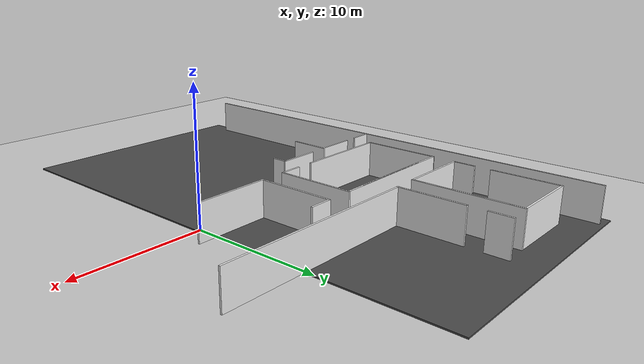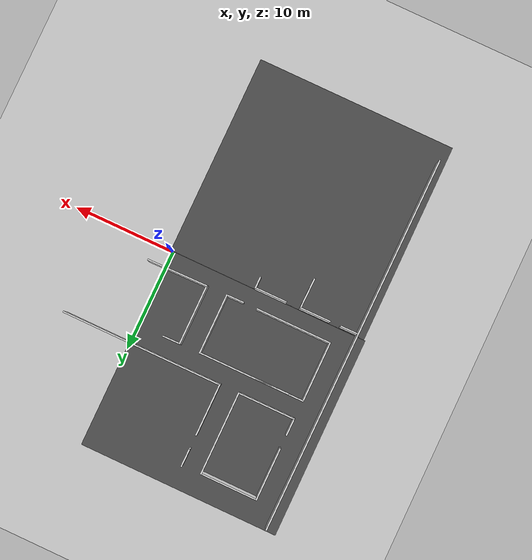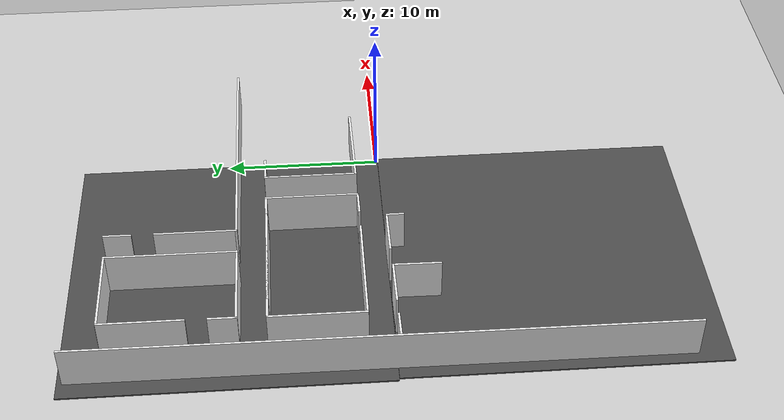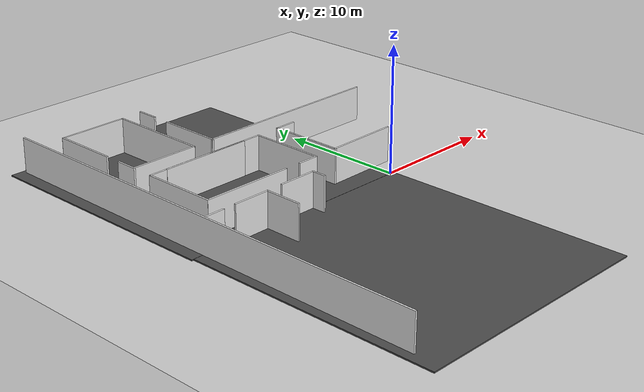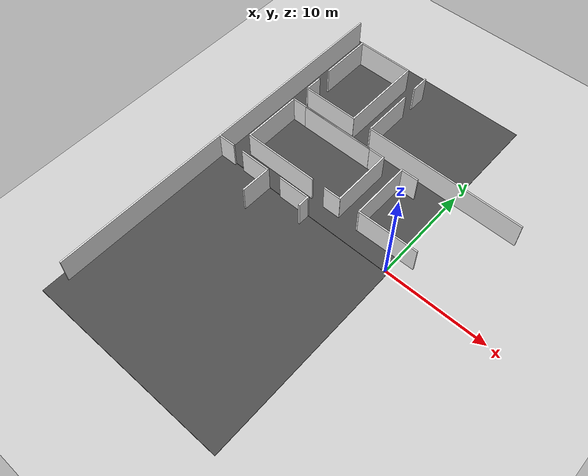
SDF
<sdf version="1.6">
 <world name="default">
  <model name="ground_plane">
   <static>1</static>
   <link name="link">
    <collision name="collision">
     <geometry><plane><normal>0 0 1</normal><size>100 100</size></plane></geometry>
     <surface><friction><ode><mu>100</mu><mu2>50</mu2></ode></friction></surface>
    </collision>
    <visual name="visual">
     <cast_shadows>0</cast_shadows>
     <geometry><plane><normal>0 0 1</normal><size>100 100</size></plane></geometry>
     <material>
      <script><uri>file://media/materials/scripts/gazebo.material</uri><name>Gazebo/Grey</name></script>
     </material>
    </visual>
    <velocity_decay><linear>0</linear><angular>0</angular></velocity_decay>
   </link>
  </model>
  <model name="asphalt_plane">
   <static>1</static>
   <link name="link">
    <collision name="collision"><geometry><box><size>20 20 0.1</size></box></geometry></collision>
    <visual name="visual">
     <cast_shadows>0</cast_shadows>
     <geometry><box><size>20 20 0.1</size></box></geometry>
     <material>
      <script>
       <uri>model://asphalt_plane/materials/scripts</uri>
       <uri>model://asphalt_plane/materials/textures</uri>
       <name>vrc/asphalt</name>
      </script>
     </material>
    </visual>
   </link>
   <pose>-9.73878 -10.1135 0 0 -0 0</pose>
  </model>
  <model name="asphalt_plane_0">
   <static>1</static>
   <link name="link">
    <collision name="collision"><geometry><box><size>20 20 0.1</size></box></geometry></collision>
    <visual name="visual">
     <cast_shadows>0</cast_shadows>
     <geometry><box><size>20 20 0.1</size></box></geometry>
     <material>
      <script>
       <uri>model://asphalt_plane/materials/scripts</uri>
       <uri>model://asphalt_plane/materials/textures</uri>
       <name>vrc/asphalt</name>
      </script>
     </material>
    </visual>
   </link>
   <pose>-9.90113 9.90141 0 0 -0 0</pose>
  </model>
  <model name="white_wall_outside_clone_1">
   <link name="link">
    <inertial>
     <mass>1</mass>
     <inertia>
      <ixx>0.166667</ixx>
      <ixy>0</ixy>
      <ixz>0</ixz>
      <iyy>0.166667</iyy>
      <iyz>0</iyz>
      <izz>0.166667</izz>
     </inertia>
    </inertial>
    <visual name="visual">
     <geometry><box><size>37.6355 0.139088 2.78993</size></box></geometry>
     <material>
      <script><name>Gazebo/White</name><uri>file://media/materials/scripts/gazebo.material</uri></script>
      <shader type="vertex"><normal_map>__default__</normal_map></shader>
      <ambient>1 1 1 1</ambient>
      <diffuse>1 1 1 1</diffuse>
      <specular>0 0 0 1</specular>
      <emissive>0 0 0 1</emissive>
     </material>
    </visual>
    <collision name="collision">
     <geometry><box><size>37.6355 0.139088 2.78993</size></box></geometry>
     <surface>
      <friction>
       <ode><mu>1</mu><mu2>1</mu2><fdir1>0 0 0</fdir1><slip1>0</slip1><slip2>0</slip2></ode>
       <torsional>
        <coefficient>1</coefficient>
        <patch_radius>0</patch_radius>
        <surface_radius>0</surface_radius>
        <use_patch_radius>1</use_patch_radius>
        <ode><slip>0</slip></ode>
       </torsional>
      </friction>
      <bounce><restitution_coefficient>0</restitution_coefficient><threshold>1e+06</threshold></bounce>
      <contact>
       <collide_without_contact>0</collide_without_contact>
       <collide_without_contact_bitmask>1</collide_without_contact_bitmask>
       <collide_bitmask>1</collide_bitmask>
       <ode>
        <soft_cfm>0</soft_cfm>
        <soft_erp>0.2</soft_erp>
        <kp>1e+13</kp>
        <kd>1</kd>
        <max_vel>0.01</max_vel>
        <min_depth>0</min_depth>
       </ode>
       <bullet>
        <split_impulse>1</split_impulse>
        <split_impulse_penetration_threshold>-0.01</split_impulse_penetration_threshold>
        <soft_cfm>0</soft_cfm>
        <soft_erp>0.2</soft_erp>
        <kp>1e+13</kp>
        <kd>1</kd>
       </bullet>
      </contact>
     </surface>
    </collision>
   </link>
   <static>1</static>
   <pose>-18.8746 0.750399 1.44009 4e-06 1e-06 1.56558</pose>
  </model>
  <model name="white_wall16_clone_clone">
   <link name="link">
    <inertial>
     <mass>1</mass>
     <inertia>
      <ixx>0.166667</ixx>
      <ixy>0</ixy>
      <ixz>0</ixz>
      <iyy>0.166667</iyy>
      <iyz>0</iyz>
      <izz>0.166667</izz>
     </inertia>
    </inertial>
    <visual name="visual">
     <geometry><box><size>3.08239 0.139088 2.78993</size></box></geometry>
     <material>
      <script><name>Gazebo/White</name><uri>file://media/materials/scripts/gazebo.material</uri></script>
      <shader type="vertex"><normal_map>__default__</normal_map></shader>
      <ambient>1 1 1 1</ambient>
      <diffuse>1 1 1 1</diffuse>
      <specular>0 0 0 1</specular>
      <emissive>0 0 0 1</emissive>
     </material>
    </visual>
    <collision name="collision">
     <geometry><box><size>3.08239 0.139088 2.78993</size></box></geometry>
     <surface>
      <friction>
       <ode><mu>1</mu><mu2>1</mu2><fdir1>0 0 0</fdir1><slip1>0</slip1><slip2>0</slip2></ode>
       <torsional>
        <coefficient>1</coefficient>
        <patch_radius>0</patch_radius>
        <surface_radius>0</surface_radius>
        <use_patch_radius>1</use_patch_radius>
        <ode><slip>0</slip></ode>
       </torsional>
      </friction>
      <bounce><restitution_coefficient>0</restitution_coefficient><threshold>1e+06</threshold></bounce>
      <contact>
       <collide_without_contact>0</collide_without_contact>
       <collide_without_contact_bitmask>1</collide_without_contact_bitmask>
       <collide_bitmask>1</collide_bitmask>
       <ode>
        <soft_cfm>0</soft_cfm>
        <soft_erp>0.2</soft_erp>
        <kp>1e+13</kp>
        <kd>1</kd>
        <max_vel>0.01</max_vel>
        <min_depth>0</min_depth>
       </ode>
       <bullet>
        <split_impulse>1</split_impulse>
        <split_impulse_penetration_threshold>-0.01</split_impulse_penetration_threshold>
        <soft_cfm>0</soft_cfm>
        <soft_erp>0.2</soft_erp>
        <kp>1e+13</kp>
        <kd>1</kd>
       </bullet>
      </contact>
     </surface>
    </collision>
   </link>
   <static>1</static>
   <pose>-13.0778 -1.67577 1.43998 4e-06 1e-06 1.55719</pose>
  </model>
  <model name="white_wall16_clone_clone_0">
   <link name="link">
    <inertial>
     <mass>1</mass>
     <inertia>
      <ixx>0.166667</ixx>
      <ixy>0</ixy>
      <ixz>0</ixz>
      <iyy>0.166667</iyy>
      <iyz>0</iyz>
      <izz>0.166667</izz>
     </inertia>
    </inertial>
    <visual name="visual">
     <geometry><box><size>3.08239 0.139088 2.78993</size></box></geometry>
     <material>
      <script><name>Gazebo/White</name><uri>file://media/materials/scripts/gazebo.material</uri></script>
      <shader type="vertex"><normal_map>__default__</normal_map></shader>
      <ambient>1 1 1 1</ambient>
      <diffuse>1 1 1 1</diffuse>
      <specular>0 0 0 1</specular>
      <emissive>0 0 0 1</emissive>
     </material>
    </visual>
    <collision name="collision">
     <geometry><box><size>3.08239 0.139088 2.78993</size></box></geometry>
     <surface>
      <friction>
       <ode><mu>1</mu><mu2>1</mu2><fdir1>0 0 0</fdir1><slip1>0</slip1><slip2>0</slip2></ode>
       <torsional>
        <coefficient>1</coefficient>
        <patch_radius>0</patch_radius>
        <surface_radius>0</surface_radius>
        <use_patch_radius>1</use_patch_radius>
        <ode><slip>0</slip></ode>
       </torsional>
      </friction>
      <bounce><restitution_coefficient>0</restitution_coefficient><threshold>1e+06</threshold></bounce>
      <contact>
       <collide_without_contact>0</collide_without_contact>
       <collide_without_contact_bitmask>1</collide_without_contact_bitmask>
       <collide_bitmask>1</collide_bitmask>
       <ode>
        <soft_cfm>0</soft_cfm>
        <soft_erp>0.2</soft_erp>
        <kp>1e+13</kp>
        <kd>1</kd>
        <max_vel>0.01</max_vel>
        <min_depth>0</min_depth>
       </ode>
       <bullet>
        <split_impulse>1</split_impulse>
        <split_impulse_penetration_threshold>-0.01</split_impulse_penetration_threshold>
        <soft_cfm>0</soft_cfm>
        <soft_erp>0.2</soft_erp>
        <kp>1e+13</kp>
        <kd>1</kd>
       </bullet>
      </contact>
     </surface>
    </collision>
   </link>
   <static>1</static>
   <pose>-14.5522 -0.222761 1.43999 1e-06 -4e-06 -3.13575</pose>
  </model>
  <model name="white_wall3_clone_clone_0_clone_clone_clone">
   <link name="link">
    <inertial>
     <mass>1</mass>
     <inertia>
      <ixx>0.166667</ixx>
      <ixy>0</ixy>
      <ixz>0</ixz>
      <iyy>0.166667</iyy>
      <iyz>0</iyz>
      <izz>0.166667</izz>
     </inertia>
    </inertial>
    <visual name="visual">
     <geometry><box><size>1.77743 0.139088 2.78993</size></box></geometry>
     <material>
      <script><name>Gazebo/White</name><uri>file://media/materials/scripts/gazebo.material</uri></script>
      <shader type="vertex"><normal_map>__default__</normal_map></shader>
      <ambient>1 1 1 1</ambient>
      <diffuse>1 1 1 1</diffuse>
      <specular>0 0 0 1</specular>
      <emissive>0 0 0 1</emissive>
     </material>
    </visual>
    <collision name="collision">
     <geometry><box><size>1.77743 0.139088 2.78993</size></box></geometry>
     <surface>
      <friction>
       <ode><mu>1</mu><mu2>1</mu2><fdir1>0 0 0</fdir1><slip1>0</slip1><slip2>0</slip2></ode>
       <torsional>
        <coefficient>1</coefficient>
        <patch_radius>0</patch_radius>
        <surface_radius>0</surface_radius>
        <use_patch_radius>1</use_patch_radius>
        <ode><slip>0</slip></ode>
       </torsional>
      </friction>
      <bounce><restitution_coefficient>0</restitution_coefficient><threshold>1e+06</threshold></bounce>
      <contact>
       <collide_without_contact>0</collide_without_contact>
       <collide_without_contact_bitmask>1</collide_without_contact_bitmask>
       <collide_bitmask>1</collide_bitmask>
       <ode>
        <soft_cfm>0</soft_cfm>
        <soft_erp>0.2</soft_erp>
        <kp>1e+13</kp>
        <kd>1</kd>
        <max_vel>0.01</max_vel>
        <min_depth>0</min_depth>
       </ode>
       <bullet>
        <split_impulse>1</split_impulse>
        <split_impulse_penetration_threshold>-0.01</split_impulse_penetration_threshold>
        <soft_cfm>0</soft_cfm>
        <soft_erp>0.2</soft_erp>
        <kp>1e+13</kp>
        <kd>1</kd>
       </bullet>
      </contact>
     </surface>
    </collision>
   </link>
   <static>1</static>
   <pose>-17.9987 -0.256602 1.43995 -1e-06 4e-06 0.011343</pose>
  </model>
  <model name="white_wall1_clone_0">
   <link name="link">
    <inertial>
     <mass>1</mass>
     <inertia>
      <ixx>0.166667</ixx>
      <ixy>0</ixy>
      <ixz>0</ixz>
      <iyy>0.166667</iyy>
      <iyz>0</iyz>
      <izz>0.166667</izz>
     </inertia>
    </inertial>
    <visual name="visual">
     <geometry><box><size>7.516 0.139088 2.78993</size></box></geometry>
     <material>
      <script><name>Gazebo/White</name><uri>file://media/materials/scripts/gazebo.material</uri></script>
      <shader type="vertex"><normal_map>__default__</normal_map></shader>
      <ambient>1 1 1 1</ambient>
      <diffuse>1 1 1 1</diffuse>
      <specular>0 0 0 1</specular>
      <emissive>0 0 0 1</emissive>
     </material>
    </visual>
    <collision name="collision">
     <geometry><box><size>7.516 0.139088 2.78993</size></box></geometry>
     <surface>
      <friction>
       <ode><mu>1</mu><mu2>1</mu2><fdir1>0 0 0</fdir1><slip1>0</slip1><slip2>0</slip2></ode>
       <torsional>
        <coefficient>1</coefficient>
        <patch_radius>0</patch_radius>
        <surface_radius>0</surface_radius>
        <use_patch_radius>1</use_patch_radius>
        <ode><slip>0</slip></ode>
       </torsional>
      </friction>
      <bounce><restitution_coefficient>0</restitution_coefficient><threshold>1e+06</threshold></bounce>
      <contact>
       <collide_without_contact>0</collide_without_contact>
       <collide_without_contact_bitmask>1</collide_without_contact_bitmask>
       <collide_bitmask>1</collide_bitmask>
       <ode>
        <soft_cfm>0</soft_cfm>
        <soft_erp>0.2</soft_erp>
        <kp>1e+13</kp>
        <kd>1</kd>
        <max_vel>0.01</max_vel>
        <min_depth>0</min_depth>
       </ode>
       <bullet>
        <split_impulse>1</split_impulse>
        <split_impulse_penetration_threshold>-0.01</split_impulse_penetration_threshold>
        <soft_cfm>0</soft_cfm>
        <soft_erp>0.2</soft_erp>
        <kp>1e+13</kp>
        <kd>1</kd>
       </bullet>
      </contact>
     </surface>
    </collision>
   </link>
   <static>1</static>
   <pose>-13.1864 1.55896 1.43996 -1e-06 4e-06 -1.6e-05</pose>
  </model>
  <model name="white_wall3_clone_clone_0_clone_clone_clone_0">
   <link name="link">
    <inertial>
     <mass>1</mass>
     <inertia>
      <ixx>0.166667</ixx>
      <ixy>0</ixy>
      <ixz>0</ixz>
      <iyy>0.166667</iyy>
      <iyz>0</iyz>
      <izz>0.166667</izz>
     </inertia>
    </inertial>
    <visual name="visual">
     <geometry><box><size>1.77743 0.139088 2.78993</size></box></geometry>
     <material>
      <script><name>Gazebo/White</name><uri>file://media/materials/scripts/gazebo.material</uri></script>
      <shader type="vertex"><normal_map>__default__</normal_map></shader>
      <ambient>1 1 1 1</ambient>
      <diffuse>1 1 1 1</diffuse>
      <specular>0 0 0 1</specular>
      <emissive>0 0 0 1</emissive>
     </material>
    </visual>
    <collision name="collision">
     <geometry><box><size>1.77743 0.139088 2.78993</size></box></geometry>
     <surface>
      <friction>
       <ode><mu>1</mu><mu2>1</mu2><fdir1>0 0 0</fdir1><slip1>0</slip1><slip2>0</slip2></ode>
       <torsional>
        <coefficient>1</coefficient>
        <patch_radius>0</patch_radius>
        <surface_radius>0</surface_radius>
        <use_patch_radius>1</use_patch_radius>
        <ode><slip>0</slip></ode>
       </torsional>
      </friction>
      <bounce><restitution_coefficient>0</restitution_coefficient><threshold>1e+06</threshold></bounce>
      <contact>
       <collide_without_contact>0</collide_without_contact>
       <collide_without_contact_bitmask>1</collide_without_contact_bitmask>
       <collide_bitmask>1</collide_bitmask>
       <ode>
        <soft_cfm>0</soft_cfm>
        <soft_erp>0.2</soft_erp>
        <kp>1e+13</kp>
        <kd>1</kd>
        <max_vel>0.01</max_vel>
        <min_depth>0</min_depth>
       </ode>
       <bullet>
        <split_impulse>1</split_impulse>
        <split_impulse_penetration_threshold>-0.01</split_impulse_penetration_threshold>
        <soft_cfm>0</soft_cfm>
        <soft_erp>0.2</soft_erp>
        <kp>1e+13</kp>
        <kd>1</kd>
       </bullet>
      </contact>
     </surface>
    </collision>
   </link>
   <static>1</static>
   <pose>-7.23801 1.56339 1.43995 -1e-06 4e-06 0.011343</pose>
  </model>
  <model name="white_wall6_clone_clone">
   <link name="link">
    <inertial>
     <mass>1</mass>
     <inertia>
      <ixx>0.166667</ixx>
      <ixy>0</ixy>
      <ixz>0</ixz>
      <iyy>0.166667</iyy>
      <iyz>0</iyz>
      <izz>0.166667</izz>
     </inertia>
    </inertial>
    <visual name="visual">
     <geometry><box><size>6.01508 0.139088 2.78993</size></box></geometry>
     <material>
      <script><name>Gazebo/White</name><uri>file://media/materials/scripts/gazebo.material</uri></script>
      <shader type="vertex"><normal_map>__default__</normal_map></shader>
      <ambient>1 1 1 1</ambient>
      <diffuse>1 1 1 1</diffuse>
      <specular>0 0 0 1</specular>
      <emissive>0 0 0 1</emissive>
     </material>
    </visual>
    <collision name="collision">
     <geometry><box><size>6.01508 0.139088 2.78993</size></box></geometry>
     <surface>
      <friction>
       <ode><mu>1</mu><mu2>1</mu2><fdir1>0 0 0</fdir1><slip1>0</slip1><slip2>0</slip2></ode>
       <torsional>
        <coefficient>1</coefficient>
        <patch_radius>0</patch_radius>
        <surface_radius>0</surface_radius>
        <use_patch_radius>1</use_patch_radius>
        <ode><slip>0</slip></ode>
       </torsional>
      </friction>
      <bounce><restitution_coefficient>0</restitution_coefficient><threshold>1e+06</threshold></bounce>
      <contact>
       <collide_without_contact>0</collide_without_contact>
       <collide_without_contact_bitmask>1</collide_without_contact_bitmask>
       <collide_bitmask>1</collide_bitmask>
       <ode>
        <soft_cfm>0</soft_cfm>
        <soft_erp>0.2</soft_erp>
        <kp>1e+13</kp>
        <kd>1</kd>
        <max_vel>0.01</max_vel>
        <min_depth>0</min_depth>
       </ode>
       <bullet>
        <split_impulse>1</split_impulse>
        <split_impulse_penetration_threshold>-0.01</split_impulse_penetration_threshold>
        <soft_cfm>0</soft_cfm>
        <soft_erp>0.2</soft_erp>
        <kp>1e+13</kp>
        <kd>1</kd>
       </bullet>
      </contact>
     </surface>
    </collision>
   </link>
   <static>1</static>
   <pose>-6.41389 4.52987 1.43998 4e-06 1e-06 1.56978</pose>
  </model>
  <model name="white_wall6_clone_clone_clone">
   <link name="link">
    <inertial>
     <mass>1</mass>
     <inertia>
      <ixx>0.166667</ixx>
      <ixy>0</ixy>
      <ixz>0</ixz>
      <iyy>0.166667</iyy>
      <iyz>0</iyz>
      <izz>0.166667</izz>
     </inertia>
    </inertial>
    <visual name="visual">
     <geometry><box><size>6.01508 0.139088 2.78993</size></box></geometry>
     <material>
      <script><name>Gazebo/White</name><uri>file://media/materials/scripts/gazebo.material</uri></script>
      <shader type="vertex"><normal_map>__default__</normal_map></shader>
      <ambient>1 1 1 1</ambient>
      <diffuse>1 1 1 1</diffuse>
      <specular>0 0 0 1</specular>
      <emissive>0 0 0 1</emissive>
     </material>
    </visual>
    <collision name="collision">
     <geometry><box><size>6.01508 0.139088 2.78993</size></box></geometry>
     <surface>
      <friction>
       <ode><mu>1</mu><mu2>1</mu2><fdir1>0 0 0</fdir1><slip1>0</slip1><slip2>0</slip2></ode>
       <torsional>
        <coefficient>1</coefficient>
        <patch_radius>0</patch_radius>
        <surface_radius>0</surface_radius>
        <use_patch_radius>1</use_patch_radius>
        <ode><slip>0</slip></ode>
       </torsional>
      </friction>
      <bounce><restitution_coefficient>0</restitution_coefficient><threshold>1e+06</threshold></bounce>
      <contact>
       <collide_without_contact>0</collide_without_contact>
       <collide_without_contact_bitmask>1</collide_without_contact_bitmask>
       <collide_bitmask>1</collide_bitmask>
       <ode>
        <soft_cfm>0</soft_cfm>
        <soft_erp>0.2</soft_erp>
        <kp>1e+13</kp>
        <kd>1</kd>
        <max_vel>0.01</max_vel>
        <min_depth>0</min_depth>
       </ode>
       <bullet>
        <split_impulse>1</split_impulse>
        <split_impulse_penetration_threshold>-0.01</split_impulse_penetration_threshold>
        <soft_cfm>0</soft_cfm>
        <soft_erp>0.2</soft_erp>
        <kp>1e+13</kp>
        <kd>1</kd>
       </bullet>
      </contact>
     </surface>
    </collision>
   </link>
   <static>1</static>
   <pose>-16.8721 4.5076 1.43998 4e-06 1e-06 1.56978</pose>
  </model>
  <model name="white_wall17">
   <link name="link">
    <inertial>
     <mass>1</mass>
     <inertia>
      <ixx>0.166667</ixx>
      <ixy>0</ixy>
      <ixz>0</ixz>
      <iyy>0.166667</iyy>
      <iyz>0</iyz>
      <izz>0.166667</izz>
     </inertia>
    </inertial>
    <visual name="visual">
     <geometry><box><size>10.4348 0.139088 2.78993</size></box></geometry>
     <material>
      <script><name>Gazebo/White</name><uri>file://media/materials/scripts/gazebo.material</uri></script>
      <shader type="vertex"><normal_map>__default__</normal_map></shader>
      <ambient>1 1 1 1</ambient>
      <diffuse>1 1 1 1</diffuse>
      <specular>0 0 0 1</specular>
      <emissive>0 0 0 1</emissive>
     </material>
    </visual>
    <collision name="collision">
     <geometry><box><size>10.4348 0.139088 2.78993</size></box></geometry>
     <surface>
      <friction>
       <ode><mu>1</mu><mu2>1</mu2><fdir1>0 0 0</fdir1><slip1>0</slip1><slip2>0</slip2></ode>
       <torsional>
        <coefficient>1</coefficient>
        <patch_radius>0</patch_radius>
        <surface_radius>0</surface_radius>
        <use_patch_radius>1</use_patch_radius>
        <ode><slip>0</slip></ode>
       </torsional>
      </friction>
      <bounce><restitution_coefficient>0</restitution_coefficient><threshold>1e+06</threshold></bounce>
      <contact>
       <collide_without_contact>0</collide_without_contact>
       <collide_without_contact_bitmask>1</collide_without_contact_bitmask>
       <collide_bitmask>1</collide_bitmask>
       <ode>
        <soft_cfm>0</soft_cfm>
        <soft_erp>0.2</soft_erp>
        <kp>1e+13</kp>
        <kd>1</kd>
        <max_vel>0.01</max_vel>
        <min_depth>0</min_depth>
       </ode>
       <bullet>
        <split_impulse>1</split_impulse>
        <split_impulse_penetration_threshold>-0.01</split_impulse_penetration_threshold>
        <soft_cfm>0</soft_cfm>
        <soft_erp>0.2</soft_erp>
        <kp>1e+13</kp>
        <kd>1</kd>
       </bullet>
      </contact>
     </surface>
    </collision>
   </link>
   <static>1</static>
   <pose>-11.6537 7.44962 1.43996 -1e-06 4e-06 -1.6e-05</pose>
  </model>
  <model name="white_wall1_clone_0_clone">
   <link name="link">
    <inertial>
     <mass>1</mass>
     <inertia>
      <ixx>0.166667</ixx>
      <ixy>0</ixy>
      <ixz>0</ixz>
      <iyy>0.166667</iyy>
      <iyz>0</iyz>
      <izz>0.166667</izz>
     </inertia>
    </inertial>
    <visual name="visual">
     <geometry><box><size>7.51602 0.139088 2.78993</size></box></geometry>
     <material>
      <script><name>Gazebo/White</name><uri>file://media/materials/scripts/gazebo.material</uri></script>
      <shader type="vertex"><normal_map>__default__</normal_map></shader>
      <ambient>1 1 1 1</ambient>
      <diffuse>1 1 1 1</diffuse>
      <specular>0 0 0 1</specular>
      <emissive>0 0 0 1</emissive>
     </material>
    </visual>
    <collision name="collision">
     <geometry><box><size>7.51602 0.139088 2.78993</size></box></geometry>
     <surface>
      <friction>
       <ode><mu>1</mu><mu2>1</mu2><fdir1>0 0 0</fdir1><slip1>0</slip1><slip2>0</slip2></ode>
       <torsional>
        <coefficient>1</coefficient>
        <patch_radius>0</patch_radius>
        <surface_radius>0</surface_radius>
        <use_patch_radius>1</use_patch_radius>
        <ode><slip>0</slip></ode>
       </torsional>
      </friction>
      <bounce><restitution_coefficient>0</restitution_coefficient><threshold>1e+06</threshold></bounce>
      <contact>
       <collide_without_contact>0</collide_without_contact>
       <collide_without_contact_bitmask>1</collide_without_contact_bitmask>
       <collide_bitmask>1</collide_bitmask>
       <ode>
        <soft_cfm>0</soft_cfm>
        <soft_erp>0.2</soft_erp>
        <kp>1e+13</kp>
        <kd>1</kd>
        <max_vel>0.01</max_vel>
        <min_depth>0</min_depth>
       </ode>
       <bullet>
        <split_impulse>1</split_impulse>
        <split_impulse_penetration_threshold>-0.01</split_impulse_penetration_threshold>
        <soft_cfm>0</soft_cfm>
        <soft_erp>0.2</soft_erp>
        <kp>1e+13</kp>
        <kd>1</kd>
       </bullet>
      </contact>
     </surface>
    </collision>
   </link>
   <static>1</static>
   <pose>-11.6537 7.4355 1.43996 -1e-06 4e-06 -1.6e-05</pose>
  </model>
  <model name="white_wall3_clone_clone_2">
   <link name="link">
    <inertial>
     <mass>1</mass>
     <inertia>
      <ixx>0.166667</ixx>
      <ixy>0</ixy>
      <ixz>0</ixz>
      <iyy>0.166667</iyy>
      <iyz>0</iyz>
      <izz>0.166667</izz>
     </inertia>
    </inertial>
    <visual name="visual">
     <geometry><box><size>1.77743 0.139088 2.78993</size></box></geometry>
     <material>
      <script><name>Gazebo/White</name><uri>file://media/materials/scripts/gazebo.material</uri></script>
      <shader type="vertex"><normal_map>__default__</normal_map></shader>
      <ambient>1 1 1 1</ambient>
      <diffuse>1 1 1 1</diffuse>
      <specular>0 0 0 1</specular>
      <emissive>0 0 0 1</emissive>
     </material>
    </visual>
    <collision name="collision">
     <geometry><box><size>1.77743 0.139088 2.78993</size></box></geometry>
     <surface>
      <friction>
       <ode><mu>1</mu><mu2>1</mu2><fdir1>0 0 0</fdir1><slip1>0</slip1><slip2>0</slip2></ode>
       <torsional>
        <coefficient>1</coefficient>
        <patch_radius>0</patch_radius>
        <surface_radius>0</surface_radius>
        <use_patch_radius>1</use_patch_radius>
        <ode><slip>0</slip></ode>
       </torsional>
      </friction>
      <bounce><restitution_coefficient>0</restitution_coefficient><threshold>1e+06</threshold></bounce>
      <contact>
       <collide_without_contact>0</collide_without_contact>
       <collide_without_contact_bitmask>1</collide_without_contact_bitmask>
       <collide_bitmask>1</collide_bitmask>
       <ode>
        <soft_cfm>0</soft_cfm>
        <soft_erp>0.2</soft_erp>
        <kp>1e+13</kp>
        <kd>1</kd>
        <max_vel>0.01</max_vel>
        <min_depth>0</min_depth>
       </ode>
       <bullet>
        <split_impulse>1</split_impulse>
        <split_impulse_penetration_threshold>-0.01</split_impulse_penetration_threshold>
        <soft_cfm>0</soft_cfm>
        <soft_erp>0.2</soft_erp>
        <kp>1e+13</kp>
        <kd>1</kd>
       </bullet>
      </contact>
     </surface>
    </collision>
   </link>
   <static>1</static>
   <pose>-16.8184 10.0855 1.43995 4e-06 1e-06 1.56402</pose>
  </model>
  <model name="white_wall15_clone">
   <link name="link">
    <inertial>
     <mass>1</mass>
     <inertia>
      <ixx>0.166667</ixx>
      <ixy>0</ixy>
      <ixz>0</ixz>
      <iyy>0.166667</iyy>
      <iyz>0</iyz>
      <izz>0.166667</izz>
     </inertia>
    </inertial>
    <visual name="visual">
     <geometry><box><size>5.7215 0.139088 2.78993</size></box></geometry>
     <material>
      <script><name>Gazebo/White</name><uri>file://media/materials/scripts/gazebo.material</uri></script>
      <shader type="vertex"><normal_map>__default__</normal_map></shader>
      <ambient>1 1 1 1</ambient>
      <diffuse>1 1 1 1</diffuse>
      <specular>0 0 0 1</specular>
      <emissive>0 0 0 1</emissive>
     </material>
    </visual>
    <collision name="collision">
     <geometry><box><size>5.7215 0.139088 2.78993</size></box></geometry>
     <surface>
      <friction>
       <ode><mu>1</mu><mu2>1</mu2><fdir1>0 0 0</fdir1><slip1>0</slip1><slip2>0</slip2></ode>
       <torsional>
        <coefficient>1</coefficient>
        <patch_radius>0</patch_radius>
        <surface_radius>0</surface_radius>
        <use_patch_radius>1</use_patch_radius>
        <ode><slip>0</slip></ode>
       </torsional>
      </friction>
      <bounce><restitution_coefficient>0</restitution_coefficient><threshold>1e+06</threshold></bounce>
      <contact>
       <collide_without_contact>0</collide_without_contact>
       <collide_without_contact_bitmask>1</collide_without_contact_bitmask>
       <collide_bitmask>1</collide_bitmask>
       <ode>
        <soft_cfm>0</soft_cfm>
        <soft_erp>0.2</soft_erp>
        <kp>1e+13</kp>
        <kd>1</kd>
        <max_vel>0.01</max_vel>
        <min_depth>0</min_depth>
       </ode>
       <bullet>
        <split_impulse>1</split_impulse>
        <split_impulse_penetration_threshold>-0.01</split_impulse_penetration_threshold>
        <soft_cfm>0</soft_cfm>
        <soft_erp>0.2</soft_erp>
        <kp>1e+13</kp>
        <kd>1</kd>
       </bullet>
      </contact>
     </surface>
    </collision>
   </link>
   <static>1</static>
   <pose>-14.0239 9.27471 1.43994 -1e-06 4e-06 -0.000759</pose>
  </model>
  <model name="white_wall18">
   <link name="link">
    <inertial>
     <mass>1</mass>
     <inertia>
      <ixx>0.166667</ixx>
      <ixy>0</ixy>
      <ixz>0</ixz>
      <iyy>0.166667</iyy>
      <iyz>0</iyz>
      <izz>0.166667</izz>
     </inertia>
    </inertial>
    <visual name="visual">
     <geometry><box><size>8.26846 0.139088 2.78993</size></box></geometry>
     <material>
      <script><name>Gazebo/White</name><uri>file://media/materials/scripts/gazebo.material</uri></script>
      <shader type="vertex"><normal_map>__default__</normal_map></shader>
      <ambient>1 1 1 1</ambient>
      <diffuse>1 1 1 1</diffuse>
      <specular>0 0 0 1</specular>
      <emissive>0 0 0 1</emissive>
     </material>
    </visual>
    <collision name="collision">
     <geometry><box><size>8.26846 0.139088 2.78993</size></box></geometry>
     <surface>
      <friction>
       <ode><mu>1</mu><mu2>1</mu2><fdir1>0 0 0</fdir1><slip1>0</slip1><slip2>0</slip2></ode>
       <torsional>
        <coefficient>1</coefficient>
        <patch_radius>0</patch_radius>
        <surface_radius>0</surface_radius>
        <use_patch_radius>1</use_patch_radius>
        <ode><slip>0</slip></ode>
       </torsional>
      </friction>
      <bounce><restitution_coefficient>0</restitution_coefficient><threshold>1e+06</threshold></bounce>
      <contact>
       <collide_without_contact>0</collide_without_contact>
       <collide_without_contact_bitmask>1</collide_without_contact_bitmask>
       <collide_bitmask>1</collide_bitmask>
       <ode>
        <soft_cfm>0</soft_cfm>
        <soft_erp>0.2</soft_erp>
        <kp>1e+13</kp>
        <kd>1</kd>
        <max_vel>0.01</max_vel>
        <min_depth>0</min_depth>
       </ode>
       <bullet>
        <split_impulse>1</split_impulse>
        <split_impulse_penetration_threshold>-0.01</split_impulse_penetration_threshold>
        <soft_cfm>0</soft_cfm>
        <soft_erp>0.2</soft_erp>
        <kp>1e+13</kp>
        <kd>1</kd>
       </bullet>
      </contact>
     </surface>
    </collision>
   </link>
   <static>1</static>
   <pose>-11.215 13.3404 1.43998 4e-06 1e-06 1.56978</pose>
  </model>
  <model name="white_wall15_clone_clone">
   <link name="link">
    <inertial>
     <mass>1</mass>
     <inertia>
      <ixx>0.166667</ixx>
      <ixy>0</ixy>
      <ixz>0</ixz>
      <iyy>0.166667</iyy>
      <iyz>0</iyz>
      <izz>0.166667</izz>
     </inertia>
    </inertial>
    <visual name="visual">
     <geometry><box><size>5.7215 0.139088 2.78993</size></box></geometry>
     <material>
      <script><name>Gazebo/White</name><uri>file://media/materials/scripts/gazebo.material</uri></script>
      <shader type="vertex"><normal_map>__default__</normal_map></shader>
      <ambient>1 1 1 1</ambient>
      <diffuse>1 1 1 1</diffuse>
      <specular>0 0 0 1</specular>
      <emissive>0 0 0 1</emissive>
     </material>
    </visual>
    <collision name="collision">
     <geometry><box><size>5.7215 0.139088 2.78993</size></box></geometry>
     <surface>
      <friction>
       <ode><mu>1</mu><mu2>1</mu2><fdir1>0 0 0</fdir1><slip1>0</slip1><slip2>0</slip2></ode>
       <torsional>
        <coefficient>1</coefficient>
        <patch_radius>0</patch_radius>
        <surface_radius>0</surface_radius>
        <use_patch_radius>1</use_patch_radius>
        <ode><slip>0</slip></ode>
       </torsional>
      </friction>
      <bounce><restitution_coefficient>0</restitution_coefficient><threshold>1e+06</threshold></bounce>
      <contact>
       <collide_without_contact>0</collide_without_contact>
       <collide_without_contact_bitmask>1</collide_without_contact_bitmask>
       <collide_bitmask>1</collide_bitmask>
       <ode>
        <soft_cfm>0</soft_cfm>
        <soft_erp>0.2</soft_erp>
        <kp>1e+13</kp>
        <kd>1</kd>
        <max_vel>0.01</max_vel>
        <min_depth>0</min_depth>
       </ode>
       <bullet>
        <split_impulse>1</split_impulse>
        <split_impulse_penetration_threshold>-0.01</split_impulse_penetration_threshold>
        <soft_cfm>0</soft_cfm>
        <soft_erp>0.2</soft_erp>
        <kp>1e+13</kp>
        <kd>1</kd>
       </bullet>
      </contact>
     </surface>
    </collision>
   </link>
   <static>1</static>
   <pose>-14.0062 17.4045 1.43994 -1e-06 4e-06 -0.000759</pose>
  </model>
  <model name="white_wall19">
   <link name="link">
    <inertial>
     <mass>1</mass>
     <inertia>
      <ixx>0.166667</ixx>
      <ixy>0</ixy>
      <ixz>0</ixz>
      <iyy>0.166667</iyy>
      <iyz>0</iyz>
      <izz>0.166667</izz>
     </inertia>
    </inertial>
    <visual name="visual">
     <geometry><box><size>5.22248 0.139088 2.78993</size></box></geometry>
     <material>
      <script><name>Gazebo/White</name><uri>file://media/materials/scripts/gazebo.material</uri></script>
      <shader type="vertex"><normal_map>__default__</normal_map></shader>
      <ambient>1 1 1 1</ambient>
      <diffuse>1 1 1 1</diffuse>
      <specular>0 0 0 1</specular>
      <emissive>0 0 0 1</emissive>
     </material>
    </visual>
    <collision name="collision">
     <geometry><box><size>5.22248 0.139088 2.78993</size></box></geometry>
     <surface>
      <friction>
       <ode><mu>1</mu><mu2>1</mu2><fdir1>0 0 0</fdir1><slip1>0</slip1><slip2>0</slip2></ode>
       <torsional>
        <coefficient>1</coefficient>
        <patch_radius>0</patch_radius>
        <surface_radius>0</surface_radius>
        <use_patch_radius>1</use_patch_radius>
        <ode><slip>0</slip></ode>
       </torsional>
      </friction>
      <bounce><restitution_coefficient>0</restitution_coefficient><threshold>1e+06</threshold></bounce>
      <contact>
       <collide_without_contact>0</collide_without_contact>
       <collide_without_contact_bitmask>1</collide_without_contact_bitmask>
       <collide_bitmask>1</collide_bitmask>
       <ode>
        <soft_cfm>0</soft_cfm>
        <soft_erp>0.2</soft_erp>
        <kp>1e+13</kp>
        <kd>1</kd>
        <max_vel>0.01</max_vel>
        <min_depth>0</min_depth>
       </ode>
       <bullet>
        <split_impulse>1</split_impulse>
        <split_impulse_penetration_threshold>-0.01</split_impulse_penetration_threshold>
        <soft_cfm>0</soft_cfm>
        <soft_erp>0.2</soft_erp>
        <kp>1e+13</kp>
        <kd>1</kd>
       </bullet>
      </contact>
     </surface>
    </collision>
   </link>
   <static>1</static>
   <pose>-16.8039 14.8534 1.43998 4e-06 1e-06 1.56978</pose>
  </model>
  <model name="white_wall19_clone">
   <link name="link">
    <inertial>
     <mass>1</mass>
     <inertia>
      <ixx>0.166667</ixx>
      <ixy>0</ixy>
      <ixz>0</ixz>
      <iyy>0.166667</iyy>
      <iyz>0</iyz>
      <izz>0.166667</izz>
     </inertia>
    </inertial>
    <visual name="visual">
     <geometry><box><size>5.22248 0.139088 2.78993</size></box></geometry>
     <material>
      <script><name>Gazebo/White</name><uri>file://media/materials/scripts/gazebo.material</uri></script>
      <shader type="vertex"><normal_map>__default__</normal_map></shader>
      <ambient>1 1 1 1</ambient>
      <diffuse>1 1 1 1</diffuse>
      <specular>0 0 0 1</specular>
      <emissive>0 0 0 1</emissive>
     </material>
    </visual>
    <collision name="collision">
     <geometry><box><size>5.22248 0.139088 2.78993</size></box></geometry>
     <surface>
      <friction>
       <ode><mu>1</mu><mu2>1</mu2><fdir1>0 0 0</fdir1><slip1>0</slip1><slip2>0</slip2></ode>
       <torsional>
        <coefficient>1</coefficient>
        <patch_radius>0</patch_radius>
        <surface_radius>0</surface_radius>
        <use_patch_radius>1</use_patch_radius>
        <ode><slip>0</slip></ode>
       </torsional>
      </friction>
      <bounce><restitution_coefficient>0</restitution_coefficient><threshold>1e+06</threshold></bounce>
      <contact>
       <collide_without_contact>0</collide_without_contact>
       <collide_without_contact_bitmask>1</collide_without_contact_bitmask>
       <collide_bitmask>1</collide_bitmask>
       <ode>
        <soft_cfm>0</soft_cfm>
        <soft_erp>0.2</soft_erp>
        <kp>1e+13</kp>
        <kd>1</kd>
        <max_vel>0.01</max_vel>
        <min_depth>0</min_depth>
       </ode>
       <bullet>
        <split_impulse>1</split_impulse>
        <split_impulse_penetration_threshold>-0.01</split_impulse_penetration_threshold>
        <soft_cfm>0</soft_cfm>
        <soft_erp>0.2</soft_erp>
        <kp>1e+13</kp>
        <kd>1</kd>
       </bullet>
      </contact>
     </surface>
    </collision>
   </link>
   <static>1</static>
   <pose>-9.314 11.857 1.43998 4e-06 1e-06 1.56978</pose>
  </model>
  <model name="white_wall3_clone_clone_2_clone">
   <link name="link">
    <inertial>
     <mass>1</mass>
     <inertia>
      <ixx>0.166667</ixx>
      <ixy>0</ixy>
      <ixz>0</ixz>
      <iyy>0.166667</iyy>
      <iyz>0</iyz>
      <izz>0.166667</izz>
     </inertia>
    </inertial>
    <visual name="visual">
     <geometry><box><size>1.77743 0.139088 2.78993</size></box></geometry>
     <material>
      <script><name>Gazebo/White</name><uri>file://media/materials/scripts/gazebo.material</uri></script>
      <shader type="vertex"><normal_map>__default__</normal_map></shader>
      <ambient>1 1 1 1</ambient>
      <diffuse>1 1 1 1</diffuse>
      <specular>0 0 0 1</specular>
      <emissive>0 0 0 1</emissive>
     </material>
    </visual>
    <collision name="collision">
     <geometry><box><size>1.77743 0.139088 2.78993</size></box></geometry>
     <surface>
      <friction>
       <ode><mu>1</mu><mu2>1</mu2><fdir1>0 0 0</fdir1><slip1>0</slip1><slip2>0</slip2></ode>
       <torsional>
        <coefficient>1</coefficient>
        <patch_radius>0</patch_radius>
        <surface_radius>0</surface_radius>
        <use_patch_radius>1</use_patch_radius>
        <ode><slip>0</slip></ode>
       </torsional>
      </friction>
      <bounce><restitution_coefficient>0</restitution_coefficient><threshold>1e+06</threshold></bounce>
      <contact>
       <collide_without_contact>0</collide_without_contact>
       <collide_without_contact_bitmask>1</collide_without_contact_bitmask>
       <collide_bitmask>1</collide_bitmask>
       <ode>
        <soft_cfm>0</soft_cfm>
        <soft_erp>0.2</soft_erp>
        <kp>1e+13</kp>
        <kd>1</kd>
        <max_vel>0.01</max_vel>
        <min_depth>0</min_depth>
       </ode>
       <bullet>
        <split_impulse>1</split_impulse>
        <split_impulse_penetration_threshold>-0.01</split_impulse_penetration_threshold>
        <soft_cfm>0</soft_cfm>
        <soft_erp>0.2</soft_erp>
        <kp>1e+13</kp>
        <kd>1</kd>
       </bullet>
      </contact>
     </surface>
    </collision>
   </link>
   <static>1</static>
   <pose>-9.30073 16.7187 1.43995 4e-06 1e-06 1.56402</pose>
  </model>
  <model name="white_wall17_clone_clone_clone">
   <link name="link">
    <inertial>
     <mass>1</mass>
     <inertia>
      <ixx>0.166667</ixx>
      <ixy>0</ixy>
      <ixz>0</ixz>
      <iyy>0.166667</iyy>
      <iyz>0</iyz>
      <izz>0.166667</izz>
     </inertia>
    </inertial>
    <visual name="visual">
     <geometry><box><size>16.0161 0.139088 2.78993</size></box></geometry>
     <material>
      <script><name>Gazebo/White</name><uri>file://media/materials/scripts/gazebo.material</uri></script>
      <shader type="vertex"><normal_map>__default__</normal_map></shader>
      <ambient>1 1 1 1</ambient>
      <diffuse>1 1 1 1</diffuse>
      <specular>0 0 0 1</specular>
      <emissive>0 0 0 1</emissive>
     </material>
    </visual>
    <collision name="collision">
     <geometry><box><size>16.0161 0.139088 2.78993</size></box></geometry>
     <surface>
      <friction>
       <ode><mu>1</mu><mu2>1</mu2><fdir1>0 0 0</fdir1><slip1>0</slip1><slip2>0</slip2></ode>
       <torsional>
        <coefficient>1</coefficient>
        <patch_radius>0</patch_radius>
        <surface_radius>0</surface_radius>
        <use_patch_radius>1</use_patch_radius>
        <ode><slip>0</slip></ode>
       </torsional>
      </friction>
      <bounce><restitution_coefficient>0</restitution_coefficient><threshold>1e+06</threshold></bounce>
      <contact>
       <collide_without_contact>0</collide_without_contact>
       <collide_without_contact_bitmask>1</collide_without_contact_bitmask>
       <collide_bitmask>1</collide_bitmask>
       <ode>
        <soft_cfm>0</soft_cfm>
        <soft_erp>0.2</soft_erp>
        <kp>1e+13</kp>
        <kd>1</kd>
        <max_vel>0.01</max_vel>
        <min_depth>0</min_depth>
       </ode>
       <bullet>
        <split_impulse>1</split_impulse>
        <split_impulse_penetration_threshold>-0.01</split_impulse_penetration_threshold>
        <soft_cfm>0</soft_cfm>
        <soft_erp>0.2</soft_erp>
        <kp>1e+13</kp>
        <kd>1</kd>
       </bullet>
      </contact>
     </surface>
    </collision>
   </link>
   <static>1</static>
   <pose>-1.39522 9.32901 1.43995 -1e-06 4e-06 -1.6e-05</pose>
  </model>
  <model name="white_wall2_clone_clone_clone_clone_clone_clone">
   <link name="link">
    <inertial>
     <mass>1</mass>
     <inertia>
      <ixx>0.166667</ixx>
      <ixy>0</ixy>
      <ixz>0</ixz>
      <iyy>0.166667</iyy>
      <iyz>0</iyz>
      <izz>0.166667</izz>
     </inertia>
    </inertial>
    <visual name="visual">
     <geometry><box><size>3.22688 0.139088 2.78993</size></box></geometry>
     <material>
      <script><name>Gazebo/White</name><uri>file://media/materials/scripts/gazebo.material</uri></script>
      <shader type="vertex"><normal_map>__default__</normal_map></shader>
      <ambient>1 1 1 1</ambient>
      <diffuse>1 1 1 1</diffuse>
      <specular>0 0 0 1</specular>
      <emissive>0 0 0 1</emissive>
     </material>
    </visual>
    <collision name="collision">
     <geometry><box><size>3.22688 0.139088 2.78993</size></box></geometry>
     <surface>
      <friction>
       <ode><mu>1</mu><mu2>1</mu2><fdir1>0 0 0</fdir1><slip1>0</slip1><slip2>0</slip2></ode>
       <torsional>
        <coefficient>1</coefficient>
        <patch_radius>0</patch_radius>
        <surface_radius>0</surface_radius>
        <use_patch_radius>1</use_patch_radius>
        <ode><slip>0</slip></ode>
       </torsional>
      </friction>
      <bounce><restitution_coefficient>0</restitution_coefficient><threshold>1e+06</threshold></bounce>
      <contact>
       <collide_without_contact>0</collide_without_contact>
       <collide_without_contact_bitmask>1</collide_without_contact_bitmask>
       <collide_bitmask>1</collide_bitmask>
       <ode>
        <soft_cfm>0</soft_cfm>
        <soft_erp>0.2</soft_erp>
        <kp>1e+13</kp>
        <kd>1</kd>
        <max_vel>0.01</max_vel>
        <min_depth>0</min_depth>
       </ode>
       <bullet>
        <split_impulse>1</split_impulse>
        <split_impulse_penetration_threshold>-0.01</split_impulse_penetration_threshold>
        <soft_cfm>0</soft_cfm>
        <soft_erp>0.2</soft_erp>
        <kp>1e+13</kp>
        <kd>1</kd>
       </bullet>
      </contact>
     </surface>
    </collision>
   </link>
   <static>1</static>
   <pose>-10.0611 -0.145428 1.43995 -1e-06 4e-06 0.004652</pose>
  </model>
  <model name="white_wall3_clone_clone_0_clone_clone_0_clone_clone">
   <link name="link">
    <inertial>
     <mass>1</mass>
     <inertia>
      <ixx>0.166667</ixx>
      <ixy>0</ixy>
      <ixz>0</ixz>
      <iyy>0.166667</iyy>
      <iyz>0</iyz>
      <izz>0.166667</izz>
     </inertia>
    </inertial>
    <visual name="visual">
     <geometry><box><size>1.18951 0.139088 2.78993</size></box></geometry>
     <material>
      <script><name>Gazebo/White</name><uri>file://media/materials/scripts/gazebo.material</uri></script>
      <shader type="vertex"><normal_map>__default__</normal_map></shader>
      <ambient>1 1 1 1</ambient>
      <diffuse>1 1 1 1</diffuse>
      <specular>0 0 0 1</specular>
      <emissive>0 0 0 1</emissive>
     </material>
    </visual>
    <collision name="collision">
     <geometry><box><size>1.18951 0.139088 2.78993</size></box></geometry>
     <surface>
      <friction>
       <ode><mu>1</mu><mu2>1</mu2><fdir1>0 0 0</fdir1><slip1>0</slip1><slip2>0</slip2></ode>
       <torsional>
        <coefficient>1</coefficient>
        <patch_radius>0</patch_radius>
        <surface_radius>0</surface_radius>
        <use_patch_radius>1</use_patch_radius>
        <ode><slip>0</slip></ode>
       </torsional>
      </friction>
      <bounce><restitution_coefficient>0</restitution_coefficient><threshold>1e+06</threshold></bounce>
      <contact>
       <collide_without_contact>0</collide_without_contact>
       <collide_without_contact_bitmask>1</collide_without_contact_bitmask>
       <collide_bitmask>1</collide_bitmask>
       <ode>
        <soft_cfm>0</soft_cfm>
        <soft_erp>0.2</soft_erp>
        <kp>1e+13</kp>
        <kd>1</kd>
        <max_vel>0.01</max_vel>
        <min_depth>0</min_depth>
       </ode>
       <bullet>
        <split_impulse>1</split_impulse>
        <split_impulse_penetration_threshold>-0.01</split_impulse_penetration_threshold>
        <soft_cfm>0</soft_cfm>
        <soft_erp>0.2</soft_erp>
        <kp>1e+13</kp>
        <kd>1</kd>
       </bullet>
      </contact>
     </surface>
    </collision>
   </link>
   <static>1</static>
   <pose>-8.51624 -0.669009 1.43995 4e-06 1e-06 1.57847</pose>
  </model>
  <model name="white_wall6_clone_clone_clone_0">
   <link name="link">
    <inertial>
     <mass>1</mass>
     <inertia>
      <ixx>0.166667</ixx>
      <ixy>0</ixy>
      <ixz>0</ixz>
      <iyy>0.166667</iyy>
      <iyz>0</iyz>
      <izz>0.166667</izz>
     </inertia>
    </inertial>
    <visual name="visual">
     <geometry><box><size>6.01508 0.139088 2.78993</size></box></geometry>
     <material>
      <script><name>Gazebo/White</name><uri>file://media/materials/scripts/gazebo.material</uri></script>
      <shader type="vertex"><normal_map>__default__</normal_map></shader>
      <ambient>1 1 1 1</ambient>
      <diffuse>1 1 1 1</diffuse>
      <specular>0 0 0 1</specular>
      <emissive>0 0 0 1</emissive>
     </material>
    </visual>
    <collision name="collision">
     <geometry><box><size>6.01508 0.139088 2.78993</size></box></geometry>
     <surface>
      <friction>
       <ode><mu>1</mu><mu2>1</mu2><fdir1>0 0 0</fdir1><slip1>0</slip1><slip2>0</slip2></ode>
       <torsional>
        <coefficient>1</coefficient>
        <patch_radius>0</patch_radius>
        <surface_radius>0</surface_radius>
        <use_patch_radius>1</use_patch_radius>
        <ode><slip>0</slip></ode>
       </torsional>
      </friction>
      <bounce><restitution_coefficient>0</restitution_coefficient><threshold>1e+06</threshold></bounce>
      <contact>
       <collide_without_contact>0</collide_without_contact>
       <collide_without_contact_bitmask>1</collide_without_contact_bitmask>
       <collide_bitmask>1</collide_bitmask>
       <ode>
        <soft_cfm>0</soft_cfm>
        <soft_erp>0.2</soft_erp>
        <kp>1e+13</kp>
        <kd>1</kd>
        <max_vel>0.01</max_vel>
        <min_depth>0</min_depth>
       </ode>
       <bullet>
        <split_impulse>1</split_impulse>
        <split_impulse_penetration_threshold>-0.01</split_impulse_penetration_threshold>
        <soft_cfm>0</soft_cfm>
        <soft_erp>0.2</soft_erp>
        <kp>1e+13</kp>
        <kd>1</kd>
       </bullet>
      </contact>
     </surface>
    </collision>
   </link>
   <static>1</static>
   <pose>-4.38015 4.52985 1.43998 4e-06 1e-06 1.56978</pose>
  </model>
  <model name="white_wall3_clone_clone_0_clone_clone_clone_clone">
   <link name="link">
    <inertial>
     <mass>1</mass>
     <inertia>
      <ixx>0.166667</ixx>
      <ixy>0</ixy>
      <ixz>0</ixz>
      <iyy>0.166667</iyy>
      <iyz>0</iyz>
      <izz>0.166667</izz>
     </inertia>
    </inertial>
    <visual name="visual">
     <geometry><box><size>1.77743 0.139088 2.78993</size></box></geometry>
     <material>
      <script><name>Gazebo/White</name><uri>file://media/materials/scripts/gazebo.material</uri></script>
      <shader type="vertex"><normal_map>__default__</normal_map></shader>
      <ambient>1 1 1 1</ambient>
      <diffuse>1 1 1 1</diffuse>
      <specular>0 0 0 1</specular>
      <emissive>0 0 0 1</emissive>
     </material>
    </visual>
    <collision name="collision">
     <geometry><box><size>1.77743 0.139088 2.78993</size></box></geometry>
     <surface>
      <friction>
       <ode><mu>1</mu><mu2>1</mu2><fdir1>0 0 0</fdir1><slip1>0</slip1><slip2>0</slip2></ode>
       <torsional>
        <coefficient>1</coefficient>
        <patch_radius>0</patch_radius>
        <surface_radius>0</surface_radius>
        <use_patch_radius>1</use_patch_radius>
        <ode><slip>0</slip></ode>
       </torsional>
      </friction>
      <bounce><restitution_coefficient>0</restitution_coefficient><threshold>1e+06</threshold></bounce>
      <contact>
       <collide_without_contact>0</collide_without_contact>
       <collide_without_contact_bitmask>1</collide_without_contact_bitmask>
       <collide_bitmask>1</collide_bitmask>
       <ode>
        <soft_cfm>0</soft_cfm>
        <soft_erp>0.2</soft_erp>
        <kp>1e+13</kp>
        <kd>1</kd>
        <max_vel>0.01</max_vel>
        <min_depth>0</min_depth>
       </ode>
       <bullet>
        <split_impulse>1</split_impulse>
        <split_impulse_penetration_threshold>-0.01</split_impulse_penetration_threshold>
        <soft_cfm>0</soft_cfm>
        <soft_erp>0.2</soft_erp>
        <kp>1e+13</kp>
        <kd>1</kd>
       </bullet>
      </contact>
     </surface>
    </collision>
   </link>
   <static>1</static>
   <pose>-3.54674 7.48169 1.43995 -1e-06 4e-06 0.011343</pose>
  </model>
  <model name="white_wall6_clone_clone_clone_0_clone">
   <link name="link">
    <inertial>
     <mass>1</mass>
     <inertia>
      <ixx>0.166667</ixx>
      <ixy>0</ixy>
      <ixz>0</ixz>
      <iyy>0.166667</iyy>
      <iyz>0</iyz>
      <izz>0.166667</izz>
     </inertia>
    </inertial>
    <visual name="visual">
     <geometry><box><size>6.01508 0.139088 2.78993</size></box></geometry>
     <material>
      <script><name>Gazebo/White</name><uri>file://media/materials/scripts/gazebo.material</uri></script>
      <shader type="vertex"><normal_map>__default__</normal_map></shader>
      <ambient>1 1 1 1</ambient>
      <diffuse>1 1 1 1</diffuse>
      <specular>0 0 0 1</specular>
      <emissive>0 0 0 1</emissive>
     </material>
    </visual>
    <collision name="collision">
     <geometry><box><size>6.01508 0.139088 2.78993</size></box></geometry>
     <surface>
      <friction>
       <ode><mu>1</mu><mu2>1</mu2><fdir1>0 0 0</fdir1><slip1>0</slip1><slip2>0</slip2></ode>
       <torsional>
        <coefficient>1</coefficient>
        <patch_radius>0</patch_radius>
        <surface_radius>0</surface_radius>
        <use_patch_radius>1</use_patch_radius>
        <ode><slip>0</slip></ode>
       </torsional>
      </friction>
      <bounce><restitution_coefficient>0</restitution_coefficient><threshold>1e+06</threshold></bounce>
      <contact>
       <collide_without_contact>0</collide_without_contact>
       <collide_without_contact_bitmask>1</collide_without_contact_bitmask>
       <collide_bitmask>1</collide_bitmask>
       <ode>
        <soft_cfm>0</soft_cfm>
        <soft_erp>0.2</soft_erp>
        <kp>1e+13</kp>
        <kd>1</kd>
        <max_vel>0.01</max_vel>
        <min_depth>0</min_depth>
       </ode>
       <bullet>
        <split_impulse>1</split_impulse>
        <split_impulse_penetration_threshold>-0.01</split_impulse_penetration_threshold>
        <soft_cfm>0</soft_cfm>
        <soft_erp>0.2</soft_erp>
        <kp>1e+13</kp>
        <kd>1</kd>
       </bullet>
      </contact>
     </surface>
    </collision>
   </link>
   <static>1</static>
   <pose>-1.41153 1.6483 1.43998 1e-06 -4e-06 -3.1252</pose>
  </model>
 </world>
</sdf>
